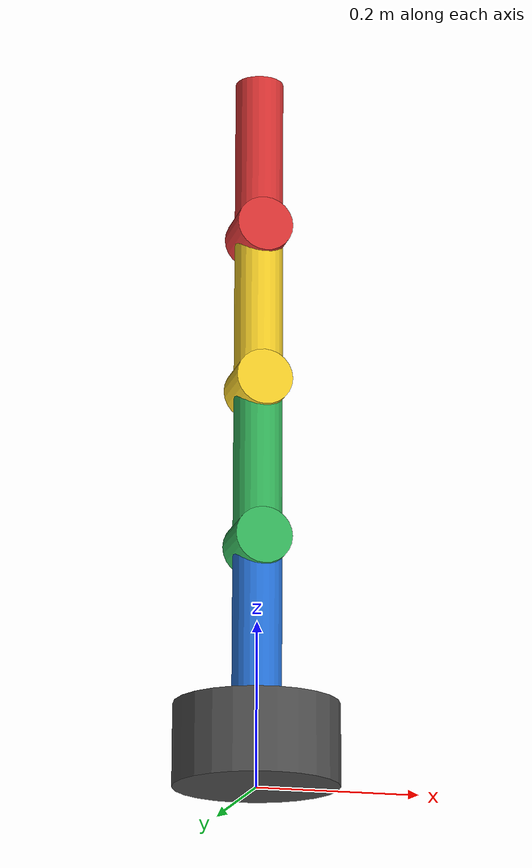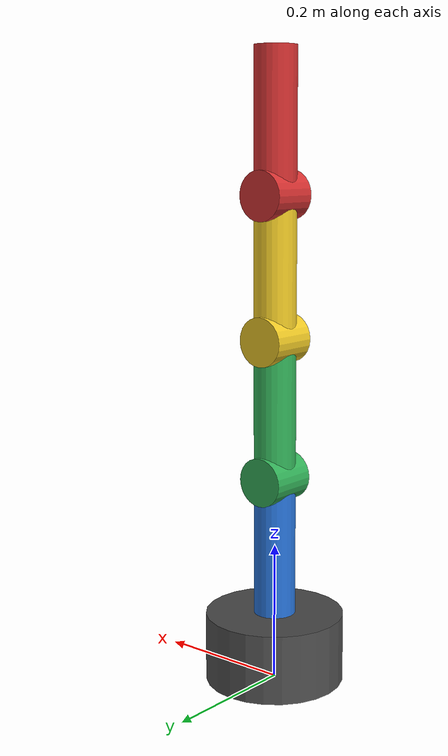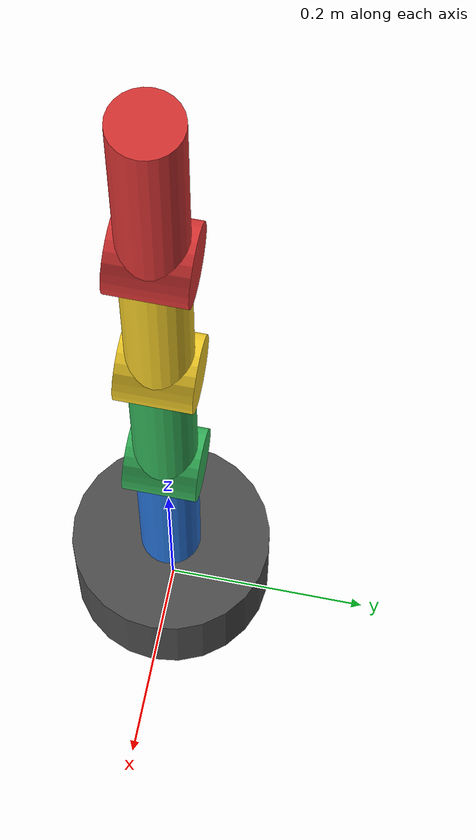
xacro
<?xml version="1.0"?>
<robot xmlns:xacro="http://www.ros.org/wiki/xacro" name="robot_4dof">

  <!-- 관절 회전 제한 및 링크 기본 파라미터 설정 -->
  <xacro:property name="joint_limit" value="1.5708"/>

  <xacro:property name="base_length" value="0.1"/>
  <xacro:property name="base_radius" value="0.1"/>
  <xacro:property name="base_mass" value="1.0"/>

  <xacro:property name="link_length" value="0.2"/>
  <xacro:property name="link_radius" value="0.03"/>
  <xacro:property name="link_mass" value="0.5"/>

  <!-- 링크별 색상 정의 -->
  <material name="grey">
    <color rgba="0.3 0.3 0.3 1.0"/>
  </material>
  <material name="blue">
    <color rgba="0.15 0.45 0.85 1.0"/>
  </material>
  <material name="green">
    <color rgba="0.2 0.7 0.35 1.0"/>
  </material>
  <material name="yellow">
    <color rgba="0.95 0.8 0.15 1.0"/>
  </material>
  <material name="red">
    <color rgba="0.85 0.2 0.2 1.0"/>
  </material>

  <!-- 원통형 링크 및 관절 구동부 생성 -->
  <xacro:macro name="cylinder_link" params="name length radius mass color use_joint_visual">
    <link name="${name}">
      <!-- joint2~4 구동부 생성 -->
      <xacro:if value="${use_joint_visual}">
        <visual>
          <origin xyz="0 0 0" rpy="1.5708 0 0"/>
          <geometry>
            <cylinder radius="0.035" length="0.07"/>
          </geometry>
          <material name="${color}"/>
        </visual>
      </xacro:if>

      <!-- 링크 원통 본체 -->
      <visual>
        <origin xyz="0 0 ${length / 2.0}" rpy="0 0 0"/>
        <geometry>
          <cylinder radius="${radius}" length="${length}"/>
        </geometry>
        <material name="${color}"/>
      </visual>

      <collision>
        <origin xyz="0 0 ${length / 2.0}" rpy="0 0 0"/>
        <geometry>
          <cylinder radius="${radius}" length="${length}"/>
        </geometry>
      </collision>

      <inertial>
        <origin xyz="0 0 ${length / 2.0}" rpy="0 0 0"/>
        <mass value="${mass}"/>
        <inertia ixx="0.001" ixy="0.0" ixz="0.0" iyy="0.001" iyz="0.0" izz="0.001"/>
      </inertial>
    </link>
  </xacro:macro>

  <link name="world"/>

  <joint name="world_joint" type="fixed">
    <parent link="world"/>
    <child link="base_link"/>
    <origin xyz="0 0 0" rpy="0 0 0"/>
  </joint>

  <!-- 베이스 및 4개 로봇 팔 링크 생성 -->
  <xacro:cylinder_link name="base_link" length="${base_length}" radius="${base_radius}" mass="${base_mass}" color="grey" use_joint_visual="false"/>
  <xacro:cylinder_link name="link1" length="${link_length}" radius="${link_radius}" mass="${link_mass}" color="blue" use_joint_visual="false"/>
  <xacro:cylinder_link name="link2" length="${link_length}" radius="${link_radius}" mass="${link_mass}" color="green" use_joint_visual="true"/>
  <xacro:cylinder_link name="link3" length="${link_length}" radius="${link_radius}" mass="${link_mass}" color="yellow" use_joint_visual="true"/>
  <xacro:cylinder_link name="link4" length="${link_length}" radius="${link_radius}" mass="${link_mass}" color="red" use_joint_visual="true"/>

  <!-- joint1 ~ joint4 정의 -->
  <joint name="joint1" type="revolute">
    <parent link="base_link"/>
    <child link="link1"/>
    <origin xyz="0 0 ${base_length}" rpy="0 0 0"/>
    <axis xyz="0 0 1"/>
    <limit lower="-${joint_limit}" upper="${joint_limit}" effort="10.0" velocity="1.0"/>
    <dynamics damping="0.1" friction="0.1"/>
  </joint>

  <joint name="joint2" type="revolute">
    <parent link="link1"/>
    <child link="link2"/>
    <origin xyz="0 0 ${link_length}" rpy="0 0 0"/>
    <axis xyz="0 1 0"/>
    <limit lower="-${joint_limit}" upper="${joint_limit}" effort="10.0" velocity="1.0"/>
    <dynamics damping="0.1" friction="0.1"/>
  </joint>

  <joint name="joint3" type="revolute">
    <parent link="link2"/>
    <child link="link3"/>
    <origin xyz="0 0 ${link_length}" rpy="0 0 0"/>
    <axis xyz="0 1 0"/>
    <limit lower="-${joint_limit}" upper="${joint_limit}" effort="10.0" velocity="1.0"/>
    <dynamics damping="0.1" friction="0.1"/>
  </joint>

  <joint name="joint4" type="revolute">
    <parent link="link3"/>
    <child link="link4"/>
    <origin xyz="0 0 ${link_length}" rpy="0 0 0"/>
    <axis xyz="0 1 0"/>
    <limit lower="-${joint_limit}" upper="${joint_limit}" effort="10.0" velocity="1.0"/>
    <dynamics damping="0.1" friction="0.1"/>
  </joint>

  <gazebo reference="base_link">
    <material>Gazebo/Grey</material>
  </gazebo>
  <gazebo reference="link1">
    <material>Gazebo/Blue</material>
  </gazebo>
  <gazebo reference="link2">
    <material>Gazebo/Green</material>
  </gazebo>
  <gazebo reference="link3">
    <material>Gazebo/Yellow</material>
  </gazebo>
  <gazebo reference="link4">
    <material>Gazebo/Red</material>
  </gazebo>

  <ros2_control name="GazeboSystem" type="system">
    <hardware>
      <plugin>gazebo_ros2_control/GazeboSystem</plugin>
    </hardware>

    <joint name="joint1">
      <command_interface name="position">
        <param name="min">-${joint_limit}</param>
        <param name="max">${joint_limit}</param>
      </command_interface>
      <state_interface name="position">
        <param name="initial_value">0.0</param>
      </state_interface>
      <state_interface name="velocity"/>
    </joint>

    <joint name="joint2">
      <command_interface name="position">
        <param name="min">-${joint_limit}</param>
        <param name="max">${joint_limit}</param>
      </command_interface>
      <state_interface name="position">
        <param name="initial_value">0.0</param>
      </state_interface>
      <state_interface name="velocity"/>
    </joint>

    <joint name="joint3">
      <command_interface name="position">
        <param name="min">-${joint_limit}</param>
        <param name="max">${joint_limit}</param>
      </command_interface>
      <state_interface name="position">
        <param name="initial_value">0.0</param>
      </state_interface>
      <state_interface name="velocity"/>
    </joint>

    <joint name="joint4">
      <command_interface name="position">
        <param name="min">-${joint_limit}</param>
        <param name="max">${joint_limit}</param>
      </command_interface>
      <state_interface name="position">
        <param name="initial_value">0.0</param>
      </state_interface>
      <state_interface name="velocity"/>
    </joint>
  </ros2_control>

  <gazebo>
    <plugin name="gazebo_ros2_control" filename="libgazebo_ros2_control.so">
      <parameters>$(find robot_4dof_description)/config/ros2_controllers.yaml</parameters>
    </plugin>
  </gazebo>

</robot>
